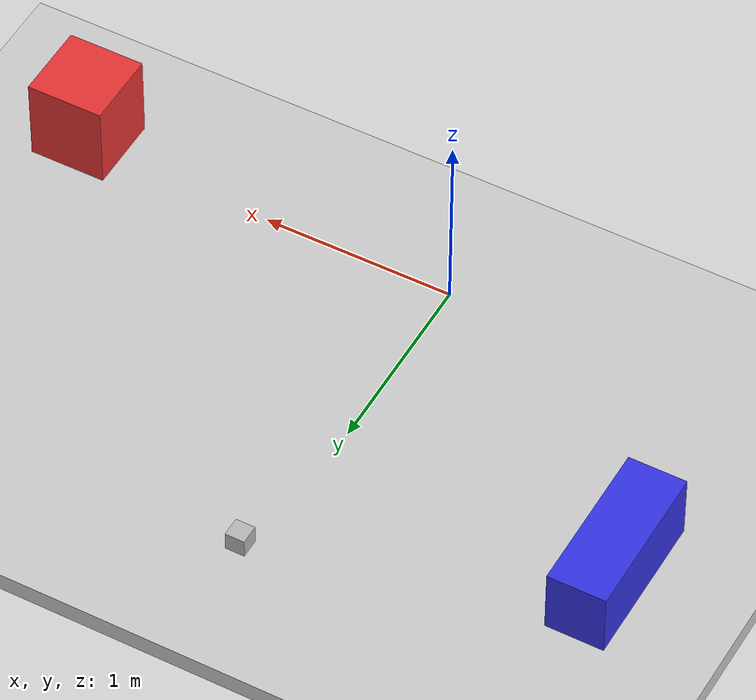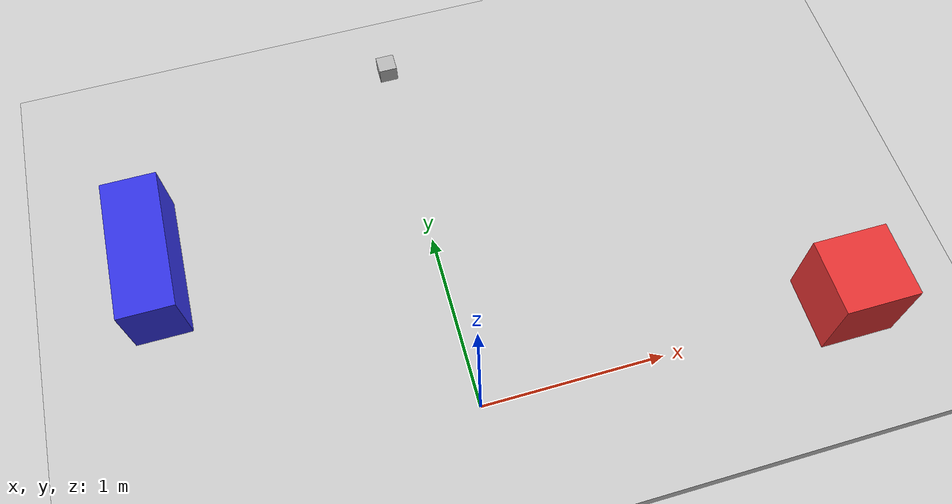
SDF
<sdf version="1.8">
 <world name="yahboomcar_world">
  <physics name="1ms" type="ignored">
   <max_step_size>0.001</max_step_size>
   <real_time_factor>1.0</real_time_factor>
  </physics>
  <plugin filename="ignition-gazebo-physics-system" name="ignition::gazebo::systems::Physics"/>
  <plugin filename="ignition-gazebo-sensors-system" name="ignition::gazebo::systems::Sensors">
   <render_engine>ogre2</render_engine>
  </plugin>
  <plugin filename="ignition-gazebo-scene-broadcaster-system" name="ignition::gazebo::systems::SceneBroadcaster"/>
  <light name="sun" type="directional">
   <cast_shadows>false</cast_shadows>
   <pose>0 0 10 0 0 0</pose>
   <diffuse>0.8 0.8 0.8 1</diffuse>
   <specular>0.2 0.2 0.2 1</specular>
   <attenuation>
    <range>1000</range>
    <constant>0.9</constant>
    <linear>0.01</linear>
    <quadratic>0.001</quadratic>
   </attenuation>
   <direction>-0.5 0.1 -0.9</direction>
  </light>
  <model name="ground_plane">
   <static>true</static>
   <link name="link">
    <collision name="collision"><geometry><box><size>20 20 0.1</size></box></geometry></collision>
    <visual name="visual">
     <geometry><box><size>20 20 0.1</size></box></geometry>
     <material>
      <ambient>0.8 0.8 0.8 1</ambient>
      <diffuse>0.8 0.8 0.8 1</diffuse>
      <specular>0.8 0.8 0.8 1</specular>
     </material>
    </visual>
   </link>
  </model>
  <model name="obstacle_box_1">
   <pose>2.0 0 0.25 0 0 0</pose>
   <static>true</static>
   <link name="link">
    <collision name="c"><geometry><box><size>0.4 0.4 0.5</size></box></geometry></collision>
    <visual name="v">
     <geometry><box><size>0.4 0.4 0.5</size></box></geometry>
     <material><ambient>0.9 0.2 0.2 1</ambient><diffuse>0.9 0.2 0.2 1</diffuse></material>
    </visual>
   </link>
  </model>
  <model name="obstacle_box_2">
   <pose>-1.5 1.2 0.2 0 0 0</pose>
   <static>true</static>
   <link name="link">
    <collision name="c"><geometry><box><size>0.3 0.8 0.4</size></box></geometry></collision>
    <visual name="v">
     <geometry><box><size>0.3 0.8 0.4</size></box></geometry>
     <material><ambient>0.2 0.2 0.9 1</ambient><diffuse>0.2 0.2 0.9 1</diffuse></material>
    </visual>
   </link>
  </model>
  <model name="test_lidar">
   <static>true</static>
   <pose>0 2.0 0.3 0 0 0</pose>
   <link name="link">
    <inertial><mass>0.1</mass><inertia><ixx>0.0001</ixx><iyy>0.0001</iyy><izz>0.0001</izz></inertia></inertial>
    <collision name="c"><geometry><box><size>0.1 0.1 0.1</size></box></geometry></collision>
    <visual name="v"><geometry><box><size>0.1 0.1 0.1</size></box></geometry></visual>
    <sensor name="lidar" type="lidar">
     <topic>lidar</topic>
     <update_rate>10</update_rate>
     <lidar>
      <scan>
       <horizontal>
        <samples>640</samples>
        <resolution>1</resolution>
        <min_angle>-1.5708</min_angle>
        <max_angle>1.5708</max_angle>
       </horizontal>
       <vertical>
        <samples>1</samples>
        <resolution>1</resolution>
        <min_angle>0</min_angle>
        <max_angle>0</max_angle>
       </vertical>
      </scan>
      <range><min>0.08</min><max>10.0</max><resolution>0.01</resolution></range>
     </lidar>
     <always_on>1</always_on>
     <visualize>false</visualize>
    </sensor>
   </link>
  </model>
 </world>
</sdf>
